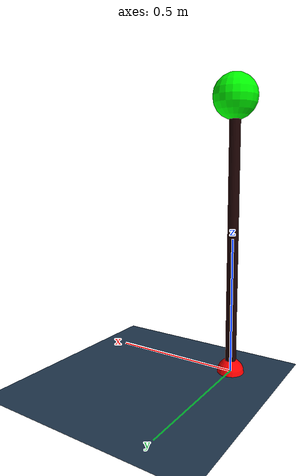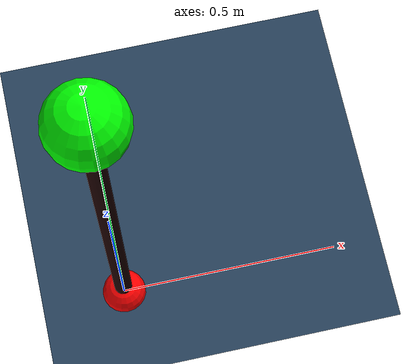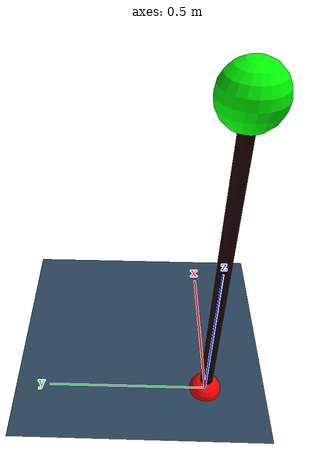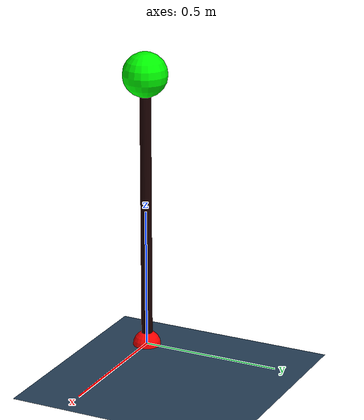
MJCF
<mujoco model="inverted_pendulum">
  <option timestep="0.002" gravity="0 0 -9.81" integrator="implicitfast"/>
  <size nconmax="50" njmax="50"/>

  <visual>
    <headlight diffuse="0.6 0.6 0.6" ambient="0.3 0.3 0.3" specular="0 0 0"/>
    <rgba haze="0.15 0.25 0.35 1"/>
    <global azimuth="120" elevation="-20"/>
    <scale contactwidth="0.075" contactheight="0.025" forcewidth="0.05" com="0.05" framewidth="0.01" framelength="0.2"/>
  </visual>

  <asset>
    <texture type="skybox" builtin="gradient" rgb1="0.3 0.5 0.7" rgb2="0 0 0" width="512" height="3072"/>
    <texture type="2d" name="groundplane" builtin="checker" mark="edge"
             rgb1="0.2 0.3 0.4" rgb2="0.1 0.2 0.3"
             markrgb="0.8 0.8 0.8" width="300" height="300"/>
    <material name="groundplane" texture="groundplane" texuniform="true" texrepeat="5 5" reflectance="0.2"/>
  </asset>

  <default>
    <joint damping="0.001" armature="0.0"/>
    <geom  condim="3" friction="0.8 0.01 0.001" solref="0.005 1" solimp="0.9 0.9 0.01"/>
  </default>

  <worldbody>
    <light pos="0 0 1.5" dir="0 0 -1" directional="true"/>
    <geom name="floor" size="0 0 0.05" type="plane" material="groundplane" contype="1"/>

    <!-- Inverted pendulum base -->
    <body name="pole" pos="0 0 0">
      <!-- Hinge about Y so motion is in the X-Z plane -->
      <joint name="hinge" type="hinge" axis="0 1 0" limited="false"/>

      <!-- Base visual -->
      <geom type="sphere" pos="0 0 0" size="0.05" rgba="1 0 0 1"/>

      <!-- Rod geometry -->
      <geom name="rod" type="capsule" fromto="0 0 0  0 0 1.0" size="0.02" rgba="0.1 0 0 1" mass="1.0"/>

      <!-- Top attachment point -->
      <body name="top_attachment" pos="0 0 1.0">
        <!-- Ball joint at top -->
        <joint name="top_ball" type="ball"/>
        <!-- Visual sphere to mark the top -->
        <geom type="sphere" size="0.08" rgba="0 1 0 1"/>
      </body>
    </body>
  </worldbody>

  <actuator>
    <!-- Torque motor on hinge -->
    <motor name="hinge_torque" joint="hinge" gear="1" ctrllimited="true" ctrlrange="-10 10"/>
  </actuator>
</mujoco>
